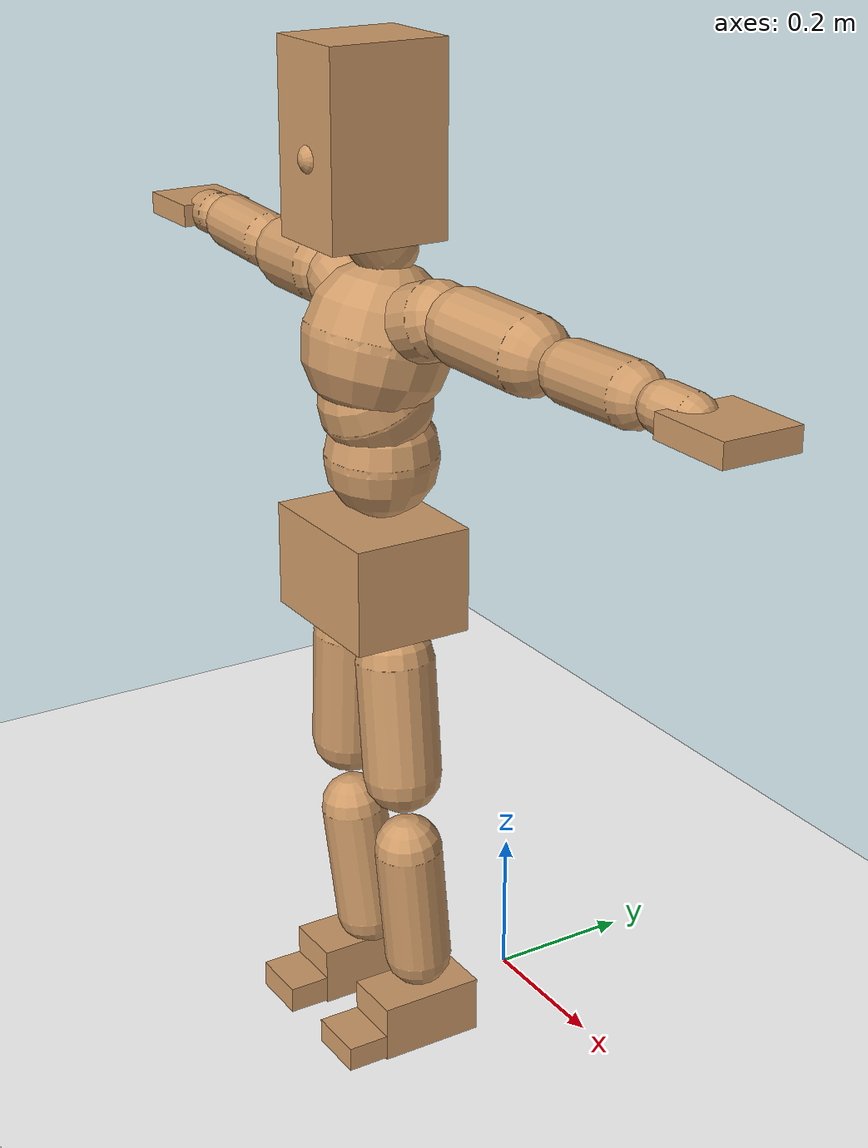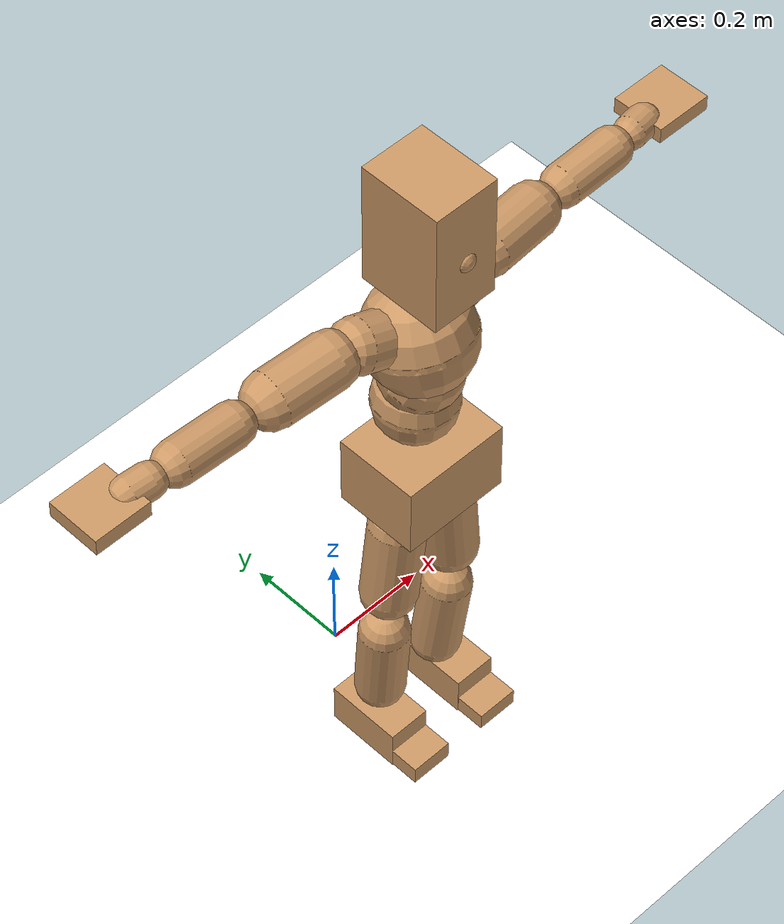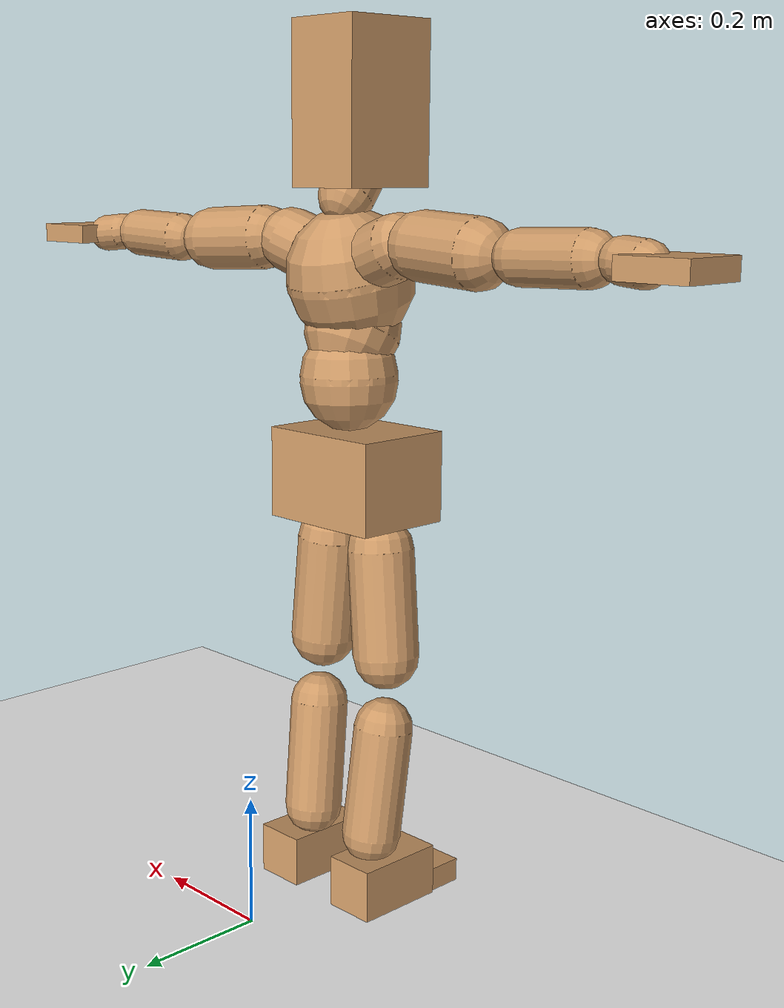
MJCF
<mujoco model="humanoid">
  <option integrator="implicitfast" />

  <visual>
    <global offwidth="1280" offheight="960" />
    <headlight active="1" ambient="0.34 0.34 0.34" diffuse="0.5 0.5 0.5" />
  </visual>

  <default>
    <joint damping="2" stiffness="2" armature="0.01" limited="true" solimplimit="0 .99 .01" />
    <geom condim="1" friction="0.7 0.005 0.0001" solimp=".99 .99 .003" solref="0.015 1" margin="0.001" rgba="0.8 0.6 .4 1" />
    <default class="smplcontact">
      <geom condim="3" friction="1. 0.005 0.0001" solref="0.015 1" solimp="0.98 0.98 0.001" priority="1" />
    </default>
    <default class="stiff_medium">
      <joint stiffness="10" />
    </default>
    <default class="stiff_medium_higher">
      <joint stiffness="50" />
    </default>
    <default class="stiff_high">
      <joint stiffness="100" />
    </default>
  </default>

  <asset>
    <texture type="skybox" builtin="gradient" rgb1="0.99 0.99 0.99" rgb2="0.608 0.828 0.892" width="100" />
    <texture builtin="flat" height="1278" mark="cross" markrgb="1 1 1" name="texgeom" random="0.01" rgb1="0.8 0.6 0.4" rgb2="0.8 0.6 0.4" type="cube" width="127" />
    <texture name="texplane" type="2d" builtin="checker" markrgb="1 1 1" rgb1="0.756 0.772 0.76" rgb2="0.6 0.6 0.6" width="100" height="100" />
    <material name="MatPlane" reflectance="0.5" texture="texplane" texrepeat="1 1" texuniform="true" />
    <material name="geom" texture="texgeom" texuniform="true" />
  </asset>

  <worldbody>
    <light name="tracking_light" pos="0 0 7" dir="0 0 -1" directional="true" cutoff="100" exponent="1" diffuse="1 1 1" specular="0.1 0.1 0.1" mode="trackcom" />
    <camera name="back" pos="0 3 2.4" xyaxes="-1 0 0 0 -1 2" mode="trackcom" />
    <camera name="side" pos="-3 0 2.4" xyaxes="0 -1 0 1 0 2" mode="trackcom" />
    <camera name="front_side" pos="-2.8 -2.8 0.8" xyaxes="0.5 -0.5 0 0.1 0.1 1" mode="trackcom" />
    <geom condim="3" name="floor" pos="0 0 0" rgba="1 1 1 1" size="100 100 .2" type="plane" material="MatPlane" />
    <body name="Pelvis" pos="-0.0018 -0.2233 0.689868" euler="90 0 0">
      <site name="Pelvis" size="0.01" />
      <freejoint name="Pelvis" />
      <geom type="box" pos="-0.0000 -0.0121 -0.0055" size="0.104752 0.070749 0.081332" quat="1.0000 0.0000 0.0000 0.0000" density="3165.830099" name="Pelvis" />
      <body name="L_Hip" pos="0.0507514 -0.0667436 -0.00496561">
        <joint name="L_Hip_x" type="hinge" pos="0 0 0" axis="1 0 0" stiffness="10" range="-160.0 22.92" class="stiff_medium" damping="15" />
        <joint name="L_Hip_y" type="hinge" pos="0 0 0" axis="0 1 0" stiffness="10" range="-70.0 70.0" class="stiff_medium" damping="10" />
        <joint name="L_Hip_z" type="hinge" pos="0 0 0" axis="0 0 1" stiffness="10" range="-28.65 90.0" class="stiff_medium" damping="10" />
        <geom type="capsule" density="2040.816327" fromto="0.00503863 -0.0547677 -0.000657213 0.0200085 -0.219217 -0.00262885" size="0.0524436" name="L_Hip" />
        <body name="L_Knee" pos="0.0250471 -0.273985 -0.00328606">
          <joint name="L_Knee_x" type="hinge" pos="0 0 0" axis="1 0 0" range="-5.16 171.89" damping="8" />
          <joint name="L_Knee_y" type="hinge" pos="0 0 0" axis="0 1 0" range="-4.58 6.88" damping="8" />
          <joint name="L_Knee_z" type="hinge" pos="0 0 0" axis="0 0 1" range="-6.88 4.58" damping="8" />
          <geom type="capsule" density="1234.567901" fromto="-0.00197164 -0.0581268 -0.00635306 -0.00795957 -0.232507 -0.0255583" size="0.0461333" name="L_Knee" />
          <body name="L_Ankle" pos="-0.00993121 -0.290634 -0.0319113">
            <joint name="L_Ankle_x" type="hinge" pos="0 0 0" axis="1 0 0" range="-45.84 45.84" class="stiff_medium" damping="6" />
            <joint name="L_Ankle_y" type="hinge" pos="0 0 0" axis="0 1 0" range="-74.48 22.92" class="stiff_medium" damping="3" />
            <joint name="L_Ankle_z" type="hinge" pos="0 0 0" axis="0 0 1" range="-4.58 4.58" class="stiff_medium" damping="6" />
            <geom type="box" pos="0.0170145 -0.0174526 0.0176717" size="0.0411874 0.0395672 0.0724831" quat="1.0000 0.0000 0.0000 0.0000" density="449.071558" name="L_Ankle" class="smplcontact" />
            <body name="L_Toe" pos="0.0192782 -0.0407472 0.0871172">
              <joint name="L_Toe_x" type="hinge" pos="0 0 0" axis="1 0 0" range="-91.67 22.92" />
              <joint name="L_Toe_y" type="hinge" pos="0 0 0" axis="0 1 0" range="-4.58 4.58" />
              <joint name="L_Toe_z" type="hinge" pos="0 0 0" axis="0 0 1" range="-4.58 4.58" />
              <geom type="box" pos="-0.00219071 0.0040163 0.0181099" size="0.0407611 0.0170548 0.042296" quat="1.0000 0.0000 0.0000 0.0000" density="423.206892" name="L_Toe" class="smplcontact" />
            </body>
          </body>
        </body>
      </body>
      <body name="R_Hip" pos="-0.049437 -0.0660864 -0.00314002">
        <joint name="R_Hip_x" type="hinge" pos="0 0 0" axis="1 0 0" stiffness="10" range="-160.0 22.92" class="stiff_medium" damping="15" />
        <joint name="R_Hip_y" type="hinge" pos="0 0 0" axis="0 1 0" stiffness="10" range="-70.0 70.0" class="stiff_medium" damping="10" />
        <joint name="R_Hip_z" type="hinge" pos="0 0 0" axis="0 0 1" stiffness="10" range="-90.0 28.65" class="stiff_medium" damping="10" />
        <geom type="capsule" density="2040.816327" fromto="-0.00562282 -0.0558631 -0.00131443 -0.0223452 -0.223525 -0.00518468" size="0.0516762" name="R_Hip" />
        <body name="R_Knee" pos="-0.027968 -0.279388 -0.0064991">
          <joint name="R_Knee_x" type="hinge" pos="0 0 0" axis="1 0 0" range="-5.16 171.89" damping="8" />
          <joint name="R_Knee_y" type="hinge" pos="0 0 0" axis="0 1 0" range="-6.88 4.58" damping="8" />
          <joint name="R_Knee_z" type="hinge" pos="0 0 0" axis="0 0 1" range="-4.58 6.88" damping="8" />
          <geom type="capsule" density="1234.567901" fromto="0.00233676 -0.0581998 -0.00620701 0.00920098 -0.232726 -0.024682" size="0.0461333" name="R_Knee" />
          <body name="R_Ankle" pos="0.0115377 -0.290926 -0.030889">
            <joint name="R_Ankle_x" type="hinge" pos="0 0 0" axis="1 0 0" range="-45.84 45.84" class="stiff_medium" damping="6" />
            <joint name="R_Ankle_y" type="hinge" pos="0 0 0" axis="0 1 0" range="-22.92 74.48" class="stiff_medium" damping="3" />
            <joint name="R_Ankle_z" type="hinge" pos="0 0 0" axis="0 0 1" range="-4.58 4.58" class="stiff_medium" damping="6" />
            <geom type="box" pos="-0.015481 -0.0127061 0.018694" size="0.0411874 0.0407611 0.0737622" quat="1.0000 0.0000 0.0000 0.0000" density="434.700981" name="R_Ankle" class="smplcontact" />
            <body name="R_Toe" pos="-0.018548 -0.0351244 0.0900381">
              <joint name="R_Toe_x" type="hinge" pos="0 0 0" axis="1 0 0" range="-91.67 22.92" />
              <joint name="R_Toe_y" type="hinge" pos="0 0 0" axis="0 1 0" range="-4.58 4.58" />
              <joint name="R_Toe_z" type="hinge" pos="0 0 0" axis="0 0 1" range="-4.58 4.58" />
              <geom type="box" pos="0.00306699 0.00328606 0.0165764" size="0.0408463 0.0184192 0.0420402" quat="1.0000 0.0000 0.0000 0.0000" density="407.384095" name="R_Toe" class="smplcontact" />
            </body>
          </body>
        </body>
      </body>
      <body name="Torso" pos="-0.00196199 0.0855426 -0.020954">
        <joint name="Torso_x" type="hinge" pos="0 0 0" axis="1 0 0" range="-25.78 57.3" class="stiff_medium" damping="15" />
        <joint name="Torso_y" type="hinge" pos="0 0 0" axis="0 1 0" range="-57.3 57.3" class="stiff_high" damping="20" />
        <joint name="Torso_z" type="hinge" pos="0 0 0" axis="0 0 1" range="-34.38 34.38" class="stiff_high" damping="20" />
        <geom type="capsule" density="2040.816327" fromto="0.00196199 0.0477155 0.000392397 0.00235438 0.0583102 0.000470877" size="0.0753546" name="Torso" />
        <body name="Spine" pos="0.00431637 0.106104 0.000863274">
          <joint name="Spine_x" type="hinge" pos="0 0 0" axis="1 0 0" stiffness="10" range="-25.78 57.3" class="stiff_medium" damping="15" />
          <joint name="Spine_y" type="hinge" pos="0 0 0" axis="0 1 0" stiffness="10" range="-57.3 57.3" class="stiff_high" damping="8" />
          <joint name="Spine_z" type="hinge" pos="0 0 0" axis="0 0 1" stiffness="20" range="-34.38 34.38" class="stiff_high" damping="12" />
          <geom type="capsule" density="2040.816327" fromto="0.000549356 0.0186781 0.00894666 0.000627836 0.0228375 0.0109871" size="0.0739827" name="Spine" />
          <body name="Chest" pos="0.00117719 0.0415156 0.0199338">
            <joint name="Chest_x" type="hinge" pos="0 0 0" axis="1 0 0" stiffness="10" range="-25.78 57.3" class="stiff_medium" damping="15" />
            <joint name="Chest_y" type="hinge" pos="0 0 0" axis="0 1 0" stiffness="10" range="-57.3 57.3" class="stiff_high" damping="8" />
            <joint name="Chest_z" type="hinge" pos="0 0 0" axis="0 0 1" stiffness="20" range="-34.38 34.38" class="stiff_high" damping="12" />
            <geom type="capsule" density="2040.816327" fromto="-0.000706315 0.053523 -0.0135769 -0.000784794 0.0653734 -0.0166376" size="0.0981863" name="Chest" />
            <body name="Neck" pos="-0.00219742 0.167868 -0.0336677">
              <joint name="Neck_x" type="hinge" pos="0 0 0" axis="1 0 0" range="-28.65 57.3" class="stiff_medium_higher" damping="10" />
              <joint name="Neck_y" type="hinge" pos="0 0 0" axis="0 1 0" range="-40.11 40.11" class="stiff_medium_higher" damping="10" />
              <joint name="Neck_z" type="hinge" pos="0 0 0" axis="0 0 1" range="-40.11 40.11" class="stiff_medium_higher" damping="10" />
              <geom type="capsule" density="1000" fromto="0.000784794 0.0102023 0.00808338 0.00321766 0.0408093 0.0322551" size="0.0427238" name="Neck" />
              <body name="Head" pos="0.00490613 0.0613266 0.0484008">
                <joint name="Head_x" type="hinge" pos="0 0 0" axis="1 0 0" range="-28.65 57.3" class="stiff_medium_higher" damping="2" />
                <joint name="Head_y" type="hinge" pos="0 0 0" axis="0 1 0" range="-40.11 40.11" class="stiff_medium_higher" damping="2" />
                <joint name="Head_z" type="hinge" pos="0 0 0" axis="0 0 1" range="-40.11 40.11" class="stiff_medium_higher" damping="2" />
                <geom type="box" pos="-0.00396264 0.0826494 -0.0109444" size="0.0638529 0.121594 0.0800795" quat="1.0000 0.0000 0.0000 0.0000" density="1018.069894" name="Head" />
                <geom type="capsule" name="nose" size="0.0210736 0.0105368" pos="0 0.066044 0.0471743" quat="1 0 0 0" mass="0" contype="0" conaffinity="0" />
              </body>
            </body>
            <body name="L_Thorax" pos="0.0592841 0.0915593 -0.0256547">
              <joint name="L_Thorax_x" type="hinge" pos="0 0 0" axis="1 0 0" range="-10.89 4.58" class="stiff_medium_higher" damping="20" />
              <joint name="L_Thorax_y" type="hinge" pos="0 0 0" axis="0 1 0" range="-28.65 17.19" class="stiff_medium_higher" damping="20" />
              <joint name="L_Thorax_z" type="hinge" pos="0 0 0" axis="0 0 1" range="-31.51 40.11" class="stiff_medium_higher" damping="20" />
              <geom type="capsule" density="1000" fromto="0.0136925 0.00458925 -0.00135421 0.0547701 0.018357 -0.00534159" size="0.0500458" name="L_Thorax" />
              <body name="L_Shoulder" pos="0.0684626 0.0229463 -0.00669579">
                <joint name="L_Shoulder_x" type="hinge" pos="0 0 0" axis="1 0 0" range="-97.4 97.4" class="stiff_medium" damping="6" />
                <joint name="L_Shoulder_y" type="hinge" pos="0 0 0" axis="0 1 0" range="-108.86 80.21" class="stiff_medium" damping="6" />
                <joint name="L_Shoulder_z" type="hinge" pos="0 0 0" axis="0 0 1" range="-97.4 85.94" class="stiff_medium" damping="6" />
                <geom type="capsule" density="1000" fromto="0.0390463 -0.00195607 -0.00413785 0.15626 -0.00767383 -0.0165514" size="0.0496616" name="L_Shoulder" />
                <body name="L_Elbow" pos="0.195307 -0.0096299 -0.0206892">
                  <joint name="L_Elbow_x" type="hinge" pos="0 0 0" axis="1 0 0" range="-17.19 4.58" damping="5" />
                  <joint name="L_Elbow_y" type="hinge" pos="0 0 0" axis="0 1 0" range="-180.0 17.19" damping="5" />
                  <joint name="L_Elbow_z" type="hinge" pos="0 0 0" axis="0 0 1" range="-100.84 4.58" damping="5" />
                  <geom type="capsule" density="1000" fromto="0.0374663 0.00135421 -0.000150467 0.150016 0.00541682 -0.000677103" size="0.0389032" name="L_Elbow" />
                  <body name="L_Wrist" pos="0.187482 0.00677103 -0.000902804">
                    <joint name="L_Wrist_x" type="hinge" pos="0 0 0" axis="1 0 0" range="-180.0 22.92" />
                    <joint name="L_Wrist_y" type="hinge" pos="0 0 0" axis="0 1 0" range="-17.19 17.19" />
                    <joint name="L_Wrist_z" type="hinge" pos="0 0 0" axis="0 0 1" range="-22.92 22.92" />
                    <geom type="capsule" density="1000" fromto="0.0126392 -0.00120374 -0.00225701 0.050557 -0.00489019 -0.00902804" size="0.0305462" name="L_Wrist" class="smplcontact" />
                    <body name="L_Hand" pos="0.0631962 -0.00616916 -0.0112098">
                      <joint name="L_Hand_x" type="hinge" pos="0 0 0" axis="1 0 0" range="-17.19 17.19" />
                      <joint name="L_Hand_y" type="hinge" pos="0 0 0" axis="0 1 0" range="-51.57 51.57" />
                      <joint name="L_Hand_z" type="hinge" pos="0 0 0" axis="0 0 1" range="-91.67 91.67" />
                      <geom type="box" pos="0.0370902 0.000752336 -0.00436355" size="0.0561935 0.0151771 0.0516788" quat="1.0000 0.0000 0.0000 0.0000" density="400.552564" name="L_Hand" class="smplcontact" />
                    </body>
                  </body>
                </body>
              </body>
            </body>
            <body name="R_Thorax" pos="-0.0615411 0.0893776 -0.0290402">
              <joint name="R_Thorax_x" type="hinge" pos="0 0 0" axis="1 0 0" range="-10.89 4.58" class="stiff_medium_higher" damping="20" />
              <joint name="R_Thorax_y" type="hinge" pos="0 0 0" axis="0 1 0" range="-17.19 28.65" class="stiff_medium_higher" damping="20" />
              <joint name="R_Thorax_z" type="hinge" pos="0 0 0" axis="0 0 1" range="-40.11 31.51" class="stiff_medium_higher" damping="20" />
              <geom type="capsule" density="1000" fromto="-0.0144449 0.00489019 -0.00135421 -0.0577794 0.0195607 -0.00549205" size="0.0490853" name="R_Thorax" />
              <body name="R_Shoulder" pos="-0.0722243 0.0245262 -0.00684626">
                <joint name="R_Shoulder_x" type="hinge" pos="0 0 0" axis="1 0 0" range="-97.4 97.4" class="stiff_medium" damping="6" />
                <joint name="R_Shoulder_y" type="hinge" pos="0 0 0" axis="0 1 0" range="-80.21 108.86" class="stiff_medium" damping="6" />
                <joint name="R_Shoulder_z" type="hinge" pos="0 0 0" axis="0 0 1" range="-85.94 97.4" class="stiff_medium" damping="6" />
                <geom type="capsule" density="1000" fromto="-0.0381435 -0.00203131 -0.00323505 -0.152724 -0.00805 -0.012865" size="0.0510064" name="R_Shoulder" />
                <body name="R_Elbow" pos="-0.190868 -0.0100061 -0.0161">
                  <joint name="R_Elbow_x" type="hinge" pos="0 0 0" axis="1 0 0" range="-17.19 4.58" damping="5" />
                  <joint name="R_Elbow_y" type="hinge" pos="0 0 0" axis="0 1 0" range="-17.19 180.0" damping="5" />
                  <joint name="R_Elbow_z" type="hinge" pos="0 0 0" axis="0 0 1" range="-4.58 100.84" damping="5" />
                  <geom type="capsule" density="1000" fromto="-0.0384444 0.00120374 -0.00082757 -0.153627 0.00466449 -0.00331028" size="0.0391914" name="R_Elbow" />
                  <body name="R_Wrist" pos="-0.192071 0.00586822 -0.00421308">
                    <joint name="R_Wrist_x" type="hinge" pos="0 0 0" axis="1 0 0" range="-180.0 22.92" />
                    <joint name="R_Wrist_y" type="hinge" pos="0 0 0" axis="0 1 0" range="-17.19 17.19" />
                    <joint name="R_Wrist_z" type="hinge" pos="0 0 0" axis="0 0 1" range="-22.92 22.92" />
                    <geom type="capsule" density="1000" fromto="-0.0127145 -0.000902804 -0.00157991 -0.0509332 -0.00368645 -0.00624439" size="0.0313147" name="R_Wrist" class="smplcontact" />
                    <body name="R_Hand" pos="-0.0636477 -0.00458925 -0.00774906">
                      <joint name="R_Hand_x" type="hinge" pos="0 0 0" axis="1 0 0" range="-17.19 17.19" />
                      <joint name="R_Hand_y" type="hinge" pos="0 0 0" axis="0 1 0" range="-51.57 51.57" />
                      <joint name="R_Hand_z" type="hinge" pos="0 0 0" axis="0 0 1" range="-91.67 91.67" />
                      <geom type="box" pos="-0.0347579 -0.000677103 -0.00594346" size="0.0546566 0.0157534 0.0524473" quat="1.0000 0.0000 0.0000 0.0000" density="403.679611" name="R_Hand" class="smplcontact" />
                    </body>
                  </body>
                </body>
              </body>
            </body>
          </body>
        </body>
      </body>
    </body>
  </worldbody>
  <actuator>
    <general name="L_Hip_x" joint="L_Hip_x" biastype="affine" gainprm="287.33006409732246" biasprm="-215.3247604770444 -180 -2.0" ctrllimited="true" ctrlrange="-1 1" forcerange="-360 360" />
    <general name="L_Hip_y" joint="L_Hip_y" biastype="affine" gainprm="219.9114857512855" biasprm="0.0 -180 -2.0" ctrllimited="true" ctrlrange="-1 1" forcerange="-360 360" />
    <general name="L_Hip_z" joint="L_Hip_z" biastype="affine" gainprm="186.3749841742145" biasprm="96.3683546488669 -180 -2.0" ctrllimited="true" ctrlrange="-1 1" forcerange="-360 360" />
    <general name="L_Knee_x" joint="L_Knee_x" biastype="affine" gainprm="278.10948965903646" biasprm="261.8988715665131 -180 -2.0" ctrllimited="true" ctrlrange="-1 1" forcerange="-360 360" />
    <general name="L_Knee_y" joint="L_Knee_y" biastype="affine" gainprm="18.001325905069514" biasprm="3.612831551628262 -180 -2.0" ctrllimited="true" ctrlrange="-1 1" forcerange="-360 360" />
    <general name="L_Knee_z" joint="L_Knee_z" biastype="affine" gainprm="18.001325905069514" biasprm="-3.612831551628262 -180 -2.0" ctrllimited="true" ctrlrange="-1 1" forcerange="-360 360" />
    <general name="L_Ankle_x" joint="L_Ankle_x" biastype="affine" gainprm="72.00530362027807" biasprm="0.0 -90 -2.0" ctrllimited="true" ctrlrange="-1 1" forcerange="-180 180" />
    <general name="L_Ankle_y" joint="L_Ankle_y" biastype="affine" gainprm="76.49778111491148" biasprm="-40.49512930477244 -90 -2.0" ctrllimited="true" ctrlrange="-1 1" forcerange="-180 180" />
    <general name="L_Ankle_z" joint="L_Ankle_z" biastype="affine" gainprm="7.1942471767206255" biasprm="0.0 -90 -2.0" ctrllimited="true" ctrlrange="-1 1" forcerange="-180 180" />
    <general name="L_Toe_x" joint="L_Toe_x" biastype="affine" gainprm="71.99902043497087" biasprm="-43.19689898685965 -72 -0.8" ctrllimited="true" ctrlrange="-1 1" forcerange="-144 144" />
    <general name="L_Toe_y" joint="L_Toe_y" biastype="affine" gainprm="5.755397741376501" biasprm="0.0 -72 -0.8" ctrllimited="true" ctrlrange="-1 1" forcerange="-144 144" />
    <general name="L_Toe_z" joint="L_Toe_z" biastype="affine" gainprm="5.755397741376501" biasprm="0.0 -72 -0.8" ctrllimited="true" ctrlrange="-1 1" forcerange="-144 144" />
    <general name="R_Hip_x" joint="R_Hip_x" biastype="affine" gainprm="287.33006409732246" biasprm="-215.3247604770444 -180 -2.0" ctrllimited="true" ctrlrange="-1 1" forcerange="-360 360" />
    <general name="R_Hip_y" joint="R_Hip_y" biastype="affine" gainprm="219.9114857512855" biasprm="0.0 -180 -2.0" ctrllimited="true" ctrlrange="-1 1" forcerange="-360 360" />
    <general name="R_Hip_z" joint="R_Hip_z" biastype="affine" gainprm="186.3749841742145" biasprm="-96.3683546488669 -180 -2.0" ctrllimited="true" ctrlrange="-1 1" forcerange="-360 360" />
    <general name="R_Knee_x" joint="R_Knee_x" biastype="affine" gainprm="278.10948965903646" biasprm="261.8988715665131 -180 -2.0" ctrllimited="true" ctrlrange="-1 1" forcerange="-360 360" />
    <general name="R_Knee_y" joint="R_Knee_y" biastype="affine" gainprm="18.001325905069514" biasprm="-3.612831551628262 -180 -2.0" ctrllimited="true" ctrlrange="-1 1" forcerange="-360 360" />
    <general name="R_Knee_z" joint="R_Knee_z" biastype="affine" gainprm="18.001325905069514" biasprm="3.612831551628262 -180 -2.0" ctrllimited="true" ctrlrange="-1 1" forcerange="-360 360" />
    <general name="R_Ankle_x" joint="R_Ankle_x" biastype="affine" gainprm="72.00530362027807" biasprm="0.0 -90 -2.0" ctrllimited="true" ctrlrange="-1 1" forcerange="-180 180" />
    <general name="R_Ankle_y" joint="R_Ankle_y" biastype="affine" gainprm="76.49778111491148" biasprm="40.49512930477244 -90 -2.0" ctrllimited="true" ctrlrange="-1 1" forcerange="-180 180" />
    <general name="R_Ankle_z" joint="R_Ankle_z" biastype="affine" gainprm="7.1942471767206255" biasprm="0.0 -90 -2.0" ctrllimited="true" ctrlrange="-1 1" forcerange="-180 180" />
    <general name="R_Toe_x" joint="R_Toe_x" biastype="affine" gainprm="71.99902043497087" biasprm="-43.19689898685965 -72 -0.8" ctrllimited="true" ctrlrange="-1 1" forcerange="-144 144" />
    <general name="R_Toe_y" joint="R_Toe_y" biastype="affine" gainprm="5.755397741376501" biasprm="0.0 -72 -0.8" ctrllimited="true" ctrlrange="-1 1" forcerange="-144 144" />
    <general name="R_Toe_z" joint="R_Toe_z" biastype="affine" gainprm="5.755397741376501" biasprm="0.0 -72 -0.8" ctrllimited="true" ctrlrange="-1 1" forcerange="-144 144" />
    <general name="Torso_x" joint="Torso_x" biastype="affine" gainprm="174.00234510682668" biasprm="66.0153336274335 -240 -4.0" ctrllimited="true" ctrlrange="-1 1" forcerange="-360 360" />
    <general name="Torso_y" joint="Torso_y" biastype="affine" gainprm="240.0176787342602" biasprm="0.0 -240 -4.0" ctrllimited="true" ctrlrange="-1 1" forcerange="-360 360" />
    <general name="Torso_z" joint="Torso_z" biastype="affine" gainprm="144.01060724055614" biasprm="0.0 -240 -4.0" ctrllimited="true" ctrlrange="-1 1" forcerange="-360 360" />
    <general name="Spine_x" joint="Spine_x" biastype="affine" gainprm="174.00234510682668" biasprm="66.0153336274335 -240 -4.0" ctrllimited="true" ctrlrange="-1 1" forcerange="-360 360" />
    <general name="Spine_y" joint="Spine_y" biastype="affine" gainprm="240.0176787342602" biasprm="0.0 -240 -4.0" ctrllimited="true" ctrlrange="-1 1" forcerange="-360 360" />
    <general name="Spine_z" joint="Spine_z" biastype="affine" gainprm="144.01060724055614" biasprm="0.0 -240 -4.0" ctrllimited="true" ctrlrange="-1 1" forcerange="-360 360" />
    <general name="Chest_x" joint="Chest_x" biastype="affine" gainprm="174.00234510682668" biasprm="66.0153336274335 -240 -4.0" ctrllimited="true" ctrlrange="-1 1" forcerange="-360 360" />
    <general name="Chest_y" joint="Chest_y" biastype="affine" gainprm="240.0176787342602" biasprm="0.0 -240 -4.0" ctrllimited="true" ctrlrange="-1 1" forcerange="-360 360" />
    <general name="Chest_z" joint="Chest_z" biastype="affine" gainprm="144.01060724055614" biasprm="0.0 -240 -4.0" ctrllimited="true" ctrlrange="-1 1" forcerange="-360 360" />
    <general name="Neck_x" joint="Neck_x" biastype="affine" gainprm="27.00198885760427" biasprm="9.000662952534757 -36 -0.8" ctrllimited="true" ctrlrange="-1 1" forcerange="-72 72" />
    <general name="Neck_y" joint="Neck_y" biastype="affine" gainprm="25.20185626709732" biasprm="0.0 -36 -0.8" ctrllimited="true" ctrlrange="-1 1" forcerange="-72 72" />
    <general name="Neck_z" joint="Neck_z" biastype="affine" gainprm="25.20185626709732" biasprm="0.0 -36 -0.8" ctrllimited="true" ctrlrange="-1 1" forcerange="-72 72" />
    <general name="Head_x" joint="Head_x" biastype="affine" gainprm="18.001325905069514" biasprm="6.000441968356505 -24 -0.8" ctrllimited="true" ctrlrange="-1 1" forcerange="-48 48" />
    <general name="Head_y" joint="Head_y" biastype="affine" gainprm="16.801237511398213" biasprm="0.0 -24 -0.8" ctrllimited="true" ctrlrange="-1 1" forcerange="-48 48" />
    <general name="Head_z" joint="Head_z" biastype="affine" gainprm="16.801237511398213" biasprm="0.0 -24 -0.8" ctrllimited="true" ctrlrange="-1 1" forcerange="-48 48" />
    <general name="L_Thorax_x" joint="L_Thorax_x" biastype="affine" gainprm="16.200146117011364" biasprm="-6.6078165480505335 -120 -1.6" ctrllimited="true" ctrlrange="-1 1" forcerange="-240 240" />
    <general name="L_Thorax_y" joint="L_Thorax_y" biastype="affine" gainprm="48.00353574685204" biasprm="-12.00088393671301 -120 -1.6" ctrllimited="true" ctrlrange="-1 1" forcerange="-240 240" />
    <general name="L_Thorax_z" joint="L_Thorax_z" biastype="affine" gainprm="75.00028861670033" biasprm="9.00589894029074 -120 -1.6" ctrllimited="true" ctrlrange="-1 1" forcerange="-240 240" />
    <general name="L_Shoulder_x" joint="L_Shoulder_x" biastype="affine" gainprm="81.5976331892389" biasprm="0.0 -48 -1.6" ctrllimited="true" ctrlrange="-1 1" forcerange="-96 96" />
    <general name="L_Shoulder_y" joint="L_Shoulder_y" biastype="affine" gainprm="79.19745640189629" biasprm="-12.00088393671301 -48 -1.6" ctrllimited="true" ctrlrange="-1 1" forcerange="-96 96" />
    <general name="L_Shoulder_z" joint="L_Shoulder_z" biastype="affine" gainprm="76.79727961455369" biasprm="-4.800353574685214 -48 -1.6" ctrllimited="true" ctrlrange="-1 1" forcerange="-96 96" />
    <general name="L_Elbow_x" joint="L_Elbow_x" biastype="affine" gainprm="13.67849441372996" biasprm="-7.923096672353461 -72 -0.8" ctrllimited="true" ctrlrange="-1 1" forcerange="-144 144" />
    <general name="L_Elbow_y" joint="L_Elbow_y" biastype="affine" gainprm="123.89813107227425" biasprm="-102.29653998619085 -72 -0.8" ctrllimited="true" ctrlrange="-1 1" forcerange="-144 144" />
    <general name="L_Elbow_z" joint="L_Elbow_z" biastype="affine" gainprm="66.23733950828719" biasprm="-60.4819417669107 -72 -0.8" ctrllimited="true" ctrlrange="-1 1" forcerange="-144 144" />
    <general name="L_Wrist_x" joint="L_Wrist_x" biastype="affine" gainprm="21.24973270888136" biasprm="-16.449379134196157 -12 -0.8" ctrllimited="true" ctrlrange="-1 1" forcerange="-24 24" />
    <general name="L_Wrist_y" joint="L_Wrist_y" biastype="affine" gainprm="3.6002651810139037" biasprm="0.0 -12 -0.8" ctrllimited="true" ctrlrange="-1 1" forcerange="-24 24" />
    <general name="L_Wrist_z" joint="L_Wrist_z" biastype="affine" gainprm="4.800353574685205" biasprm="0.0 -12 -0.8" ctrllimited="true" ctrlrange="-1 1" forcerange="-24 24" />
    <general name="L_Hand_x" joint="L_Hand_x" biastype="affine" gainprm="3.6002651810139037" biasprm="0.0 -12 -0.8" ctrllimited="true" ctrlrange="-1 1" forcerange="-24 24" />
    <general name="L_Hand_y" joint="L_Hand_y" biastype="affine" gainprm="10.800795543041708" biasprm="0.0 -12 -0.8" ctrllimited="true" ctrlrange="-1 1" forcerange="-24 24" />
    <general name="L_Hand_z" joint="L_Hand_z" biastype="affine" gainprm="19.199319903638422" biasprm="0.0 -12 -0.8" ctrllimited="true" ctrlrange="-1 1" forcerange="-24 24" />
    <general name="R_Thorax_x" joint="R_Thorax_x" biastype="affine" gainprm="16.200146117011364" biasprm="-6.6078165480505335 -120 -1.6" ctrllimited="true" ctrlrange="-1 1" forcerange="-240 240" />
    <general name="R_Thorax_y" joint="R_Thorax_y" biastype="affine" gainprm="48.00353574685204" biasprm="12.000883936713002 -120 -1.6" ctrllimited="true" ctrlrange="-1 1" forcerange="-240 240" />
    <general name="R_Thorax_z" joint="R_Thorax_z" biastype="affine" gainprm="75.00028861670033" biasprm="-9.00589894029074 -120 -1.6" ctrllimited="true" ctrlrange="-1 1" forcerange="-240 240" />
    <general name="R_Shoulder_x" joint="R_Shoulder_x" biastype="affine" gainprm="81.5976331892389" biasprm="0.0 -48 -1.6" ctrllimited="true" ctrlrange="-1 1" forcerange="-96 96" />
    <general name="R_Shoulder_y" joint="R_Shoulder_y" biastype="affine" gainprm="79.19745640189629" biasprm="12.00088393671301 -48 -1.6" ctrllimited="true" ctrlrange="-1 1" forcerange="-96 96" />
    <general name="R_Shoulder_z" joint="R_Shoulder_z" biastype="affine" gainprm="76.79727961455369" biasprm="4.800353574685204 -48 -1.6" ctrllimited="true" ctrlrange="-1 1" forcerange="-96 96" />
    <general name="R_Elbow_x" joint="R_Elbow_x" biastype="affine" gainprm="13.67849441372996" biasprm="-7.923096672353461 -72 -0.8" ctrllimited="true" ctrlrange="-1 1" forcerange="-144 144" />
    <general name="R_Elbow_y" joint="R_Elbow_y" biastype="affine" gainprm="123.89813107227425" biasprm="102.29653998619085 -72 -0.8" ctrllimited="true" ctrlrange="-1 1" forcerange="-144 144" />
    <general name="R_Elbow_z" joint="R_Elbow_z" biastype="affine" gainprm="66.23733950828719" biasprm="60.481941766910694 -72 -0.8" ctrllimited="true" ctrlrange="-1 1" forcerange="-144 144" />
    <general name="R_Wrist_x" joint="R_Wrist_x" biastype="affine" gainprm="21.24973270888136" biasprm="-16.449379134196157 -12 -0.8" ctrllimited="true" ctrlrange="-1 1" forcerange="-24 24" />
    <general name="R_Wrist_y" joint="R_Wrist_y" biastype="affine" gainprm="3.6002651810139037" biasprm="0.0 -12 -0.8" ctrllimited="true" ctrlrange="-1 1" forcerange="-24 24" />
    <general name="R_Wrist_z" joint="R_Wrist_z" biastype="affine" gainprm="4.800353574685205" biasprm="0.0 -12 -0.8" ctrllimited="true" ctrlrange="-1 1" forcerange="-24 24" />
    <general name="R_Hand_x" joint="R_Hand_x" biastype="affine" gainprm="3.6002651810139037" biasprm="0.0 -12 -0.8" ctrllimited="true" ctrlrange="-1 1" forcerange="-24 24" />
    <general name="R_Hand_y" joint="R_Hand_y" biastype="affine" gainprm="10.800795543041708" biasprm="0.0 -12 -0.8" ctrllimited="true" ctrlrange="-1 1" forcerange="-24 24" />
    <general name="R_Hand_z" joint="R_Hand_z" biastype="affine" gainprm="19.199319903638422" biasprm="0.0 -12 -0.8" ctrllimited="true" ctrlrange="-1 1" forcerange="-24 24" />
  </actuator>
  <contact>
    <exclude body1="Torso" body2="Chest" />
    <exclude body1="Head" body2="Chest" />
    <exclude body1="R_Knee" body2="R_Toe" />
    <exclude body1="R_Knee" body2="L_Ankle" />
    <exclude body1="R_Knee" body2="L_Toe" />
    <exclude body1="L_Knee" body2="L_Toe" />
    <exclude body1="L_Knee" body2="R_Ankle" />
    <exclude body1="L_Knee" body2="R_Toe" />
    <exclude body1="L_Shoulder" body2="Chest" />
    <exclude body1="R_Shoulder" body2="Chest" />
  </contact>
  <sensor>
    <framelinvel name="sensor_Pelvis_framelinvel" objtype="xbody" objname="Pelvis" />
    <framelinvel name="sensor_L_Hip_framelinvel" objtype="xbody" objname="L_Hip" />
    <framelinvel name="sensor_L_Knee_framelinvel" objtype="xbody" objname="L_Knee" />
    <framelinvel name="sensor_L_Ankle_framelinvel" objtype="xbody" objname="L_Ankle" />
    <framelinvel name="sensor_L_Toe_framelinvel" objtype="xbody" objname="L_Toe" />
    <framelinvel name="sensor_R_Hip_framelinvel" objtype="xbody" objname="R_Hip" />
    <framelinvel name="sensor_R_Knee_framelinvel" objtype="xbody" objname="R_Knee" />
    <framelinvel name="sensor_R_Ankle_framelinvel" objtype="xbody" objname="R_Ankle" />
    <framelinvel name="sensor_R_Toe_framelinvel" objtype="xbody" objname="R_Toe" />
    <framelinvel name="sensor_Torso_framelinvel" objtype="xbody" objname="Torso" />
    <framelinvel name="sensor_Spine_framelinvel" objtype="xbody" objname="Spine" />
    <framelinvel name="sensor_Chest_framelinvel" objtype="xbody" objname="Chest" />
    <framelinvel name="sensor_Neck_framelinvel" objtype="xbody" objname="Neck" />
    <framelinvel name="sensor_Head_framelinvel" objtype="xbody" objname="Head" />
    <framelinvel name="sensor_L_Thorax_framelinvel" objtype="xbody" objname="L_Thorax" />
    <framelinvel name="sensor_L_Shoulder_framelinvel" objtype="xbody" objname="L_Shoulder" />
    <framelinvel name="sensor_L_Elbow_framelinvel" objtype="xbody" objname="L_Elbow" />
    <framelinvel name="sensor_L_Wrist_framelinvel" objtype="xbody" objname="L_Wrist" />
    <framelinvel name="sensor_L_Hand_framelinvel" objtype="xbody" objname="L_Hand" />
    <framelinvel name="sensor_R_Thorax_framelinvel" objtype="xbody" objname="R_Thorax" />
    <framelinvel name="sensor_R_Shoulder_framelinvel" objtype="xbody" objname="R_Shoulder" />
    <framelinvel name="sensor_R_Elbow_framelinvel" objtype="xbody" objname="R_Elbow" />
    <framelinvel name="sensor_R_Wrist_framelinvel" objtype="xbody" objname="R_Wrist" />
    <framelinvel name="sensor_R_Hand_framelinvel" objtype="xbody" objname="R_Hand" />
    <frameangvel name="sensor_Pelvis_frameangvel" objtype="xbody" objname="Pelvis" />
    <frameangvel name="sensor_L_Hip_frameangvel" objtype="xbody" objname="L_Hip" />
    <frameangvel name="sensor_L_Knee_frameangvel" objtype="xbody" objname="L_Knee" />
    <frameangvel name="sensor_L_Ankle_frameangvel" objtype="xbody" objname="L_Ankle" />
    <frameangvel name="sensor_L_Toe_frameangvel" objtype="xbody" objname="L_Toe" />
    <frameangvel name="sensor_R_Hip_frameangvel" objtype="xbody" objname="R_Hip" />
    <frameangvel name="sensor_R_Knee_frameangvel" objtype="xbody" objname="R_Knee" />
    <frameangvel name="sensor_R_Ankle_frameangvel" objtype="xbody" objname="R_Ankle" />
    <frameangvel name="sensor_R_Toe_frameangvel" objtype="xbody" objname="R_Toe" />
    <frameangvel name="sensor_Torso_frameangvel" objtype="xbody" objname="Torso" />
    <frameangvel name="sensor_Spine_frameangvel" objtype="xbody" objname="Spine" />
    <frameangvel name="sensor_Chest_frameangvel" objtype="xbody" objname="Chest" />
    <frameangvel name="sensor_Neck_frameangvel" objtype="xbody" objname="Neck" />
    <frameangvel name="sensor_Head_frameangvel" objtype="xbody" objname="Head" />
    <frameangvel name="sensor_L_Thorax_frameangvel" objtype="xbody" objname="L_Thorax" />
    <frameangvel name="sensor_L_Shoulder_frameangvel" objtype="xbody" objname="L_Shoulder" />
    <frameangvel name="sensor_L_Elbow_frameangvel" objtype="xbody" objname="L_Elbow" />
    <frameangvel name="sensor_L_Wrist_frameangvel" objtype="xbody" objname="L_Wrist" />
    <frameangvel name="sensor_L_Hand_frameangvel" objtype="xbody" objname="L_Hand" />
    <frameangvel name="sensor_R_Thorax_frameangvel" objtype="xbody" objname="R_Thorax" />
    <frameangvel name="sensor_R_Shoulder_frameangvel" objtype="xbody" objname="R_Shoulder" />
    <frameangvel name="sensor_R_Elbow_frameangvel" objtype="xbody" objname="R_Elbow" />
    <frameangvel name="sensor_R_Wrist_frameangvel" objtype="xbody" objname="R_Wrist" />
    <frameangvel name="sensor_R_Hand_frameangvel" objtype="xbody" objname="R_Hand" />
    <subtreelinvel name="Chest_subtreelinvel" body="Chest" />
    <gyro name="Pelvis_gyro" site="Pelvis" />
  </sensor>
</mujoco>
